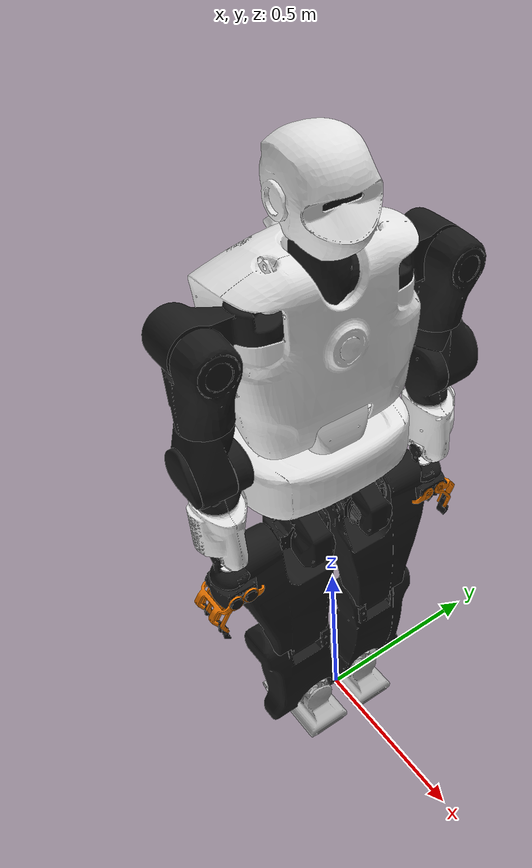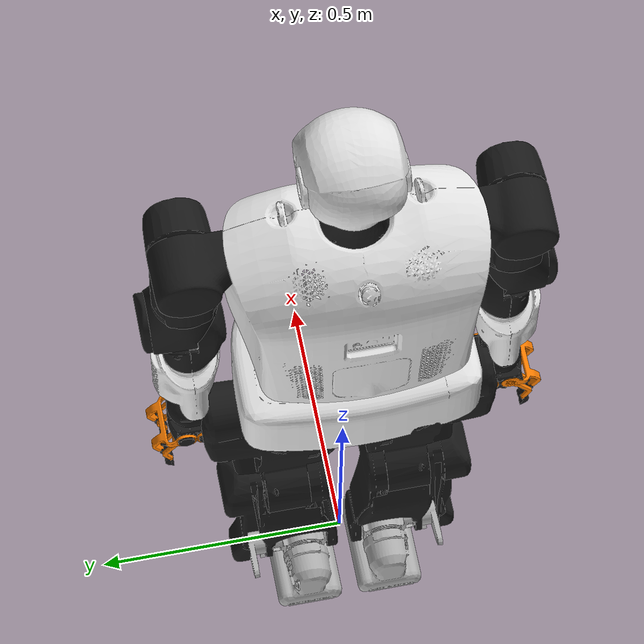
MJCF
<mujoco model="talos">
  <compiler angle="radian" meshdir="assets" autolimits="true"/>

  <default>
    <default class="talos">
      <site group="5" rgba="1 0 0 1" size="0.01" />
      <default class="visual">
        <geom type="mesh" contype="0" conaffinity="0" group="2" density="0"/>
      </default>
      <default class="collision">
        <geom type="capsule" material="bright_orange" group="3" contype="1" conaffinity="1"/>
      </default>
    </default>
  </default>

  <asset>
    <!-- materials -->
    <material name="black" rgba="0.1 0.1 0.1 1"/>
    <material name="orange" rgba="1 0.5 0 1"/>
    <material name="white" rgba="0.9 0.9 0.9 1"/>
    <material name="bright_orange"  rgba="1 0.65 0 0.2"/>
    <!-- meshes -->
    <mesh name="torso_1"                        content_type="model/stl" file="torso/torso_1.stl"/>
    <mesh name="torso_2"                        content_type="model/stl" file="torso/torso_2.stl"/>
    <mesh name="torso_2_collision"              content_type="model/stl" file="torso/torso_2_collision.stl"/>
    <mesh name="base_link"                      content_type="model/stl" file="torso/base_link.stl"/>
    <mesh name="base_link_collision"            content_type="model/stl" file="torso/base_link_collision.stl"/>
    <mesh name="head_1"                         content_type="model/stl" file="head/head_1.stl"/>
    <mesh name="head_2_default"                 content_type="model/stl" file="head/head_2_default.stl"/>
    <mesh name="orbbec"                         content_type="model/stl" file="sensors/orbbec/orbbec.stl"/>
    <mesh name="l_arm_1"                        content_type="model/stl" file="arm/arm_1.stl"/>
    <mesh name="l_arm_2"                        content_type="model/stl" file="arm/arm_2.stl"/>
    <mesh name="l_arm_2c"                       content_type="model/stl" file="arm/arm_2_collision.stl"/>
    <mesh name="l_arm_3"                        content_type="model/stl" file="arm/arm_3.stl"/>
    <mesh name="l_arm_4"                        content_type="model/stl" file="arm/arm_4.stl"/>
    <mesh name="l_arm_5"                        content_type="model/stl" file="arm/arm_5.stl"/>
    <mesh name="l_arm_5c"                       content_type="model/stl" file="arm/arm_5_collision.stl"/>
    <mesh name="l_arm_6"                        content_type="model/stl" file="arm/arm_6.stl"/>
    <mesh name="l_arm_7"                        content_type="model/stl" file="arm/arm_7.stl"/>
    <mesh name="r_arm_1"                        content_type="model/stl" file="arm/arm_1.stl" scale="1 -1 1"/>
    <mesh name="r_arm_2"                        content_type="model/stl" file="arm/arm_2.stl" scale="1 -1 1"/>
    <mesh name="r_arm_2c"                       content_type="model/stl" file="arm/arm_2_collision.stl" scale="1 -1 1"/>
    <mesh name="r_arm_3"                        content_type="model/stl" file="arm/arm_3.stl" scale="1 -1 1"/>
    <mesh name="r_arm_4"                        content_type="model/stl" file="arm/arm_4.stl" scale="1 -1 1"/>
    <mesh name="r_arm_5"                        content_type="model/stl" file="arm/arm_5.stl" scale="1 -1 1"/>
    <mesh name="r_arm_5c"                       content_type="model/stl" file="arm/arm_5_collision.stl" scale="1 -1 1"/>
    <mesh name="r_arm_6"                        content_type="model/stl" file="arm/arm_6.stl" scale="1 -1 1"/>
    <mesh name="r_arm_7"                        content_type="model/stl" file="arm/arm_7.stl" scale="1 -1 1"/>
    <mesh name="gripper_base_link"              content_type="model/stl" file="gripper/base_link.stl"/>
    <mesh name="gripper_base_link_collision"    content_type="model/stl" file="gripper/base_link_collision.stl"/>
    <mesh name="fingertip"                      content_type="model/stl" file="gripper/fingertip.stl"/>
    <mesh name="gripper_motor_double"           content_type="model/stl" file="gripper/gripper_motor_double.stl"/>
    <mesh name="gripper_motor_single"           content_type="model/stl" file="gripper/gripper_motor_single.stl"/>
    <mesh name="inner_double"                   content_type="model/stl" file="gripper/inner_double.stl"/>
    <mesh name="inner_single"                   content_type="model/stl" file="gripper/inner_single.stl"/>
    <mesh name="l_hip_z_lo_res"                 content_type="model/stl" file="v2/hip_z_lo_res.stl"/>
    <mesh name="l_hip_x_lo_res"                 content_type="model/stl" file="v2/hip_x_lo_res.stl"/>
    <mesh name="l_hip_y_lo_res"                 content_type="model/stl" file="v2/hip_y_lo_res.stl"/>
    <mesh name="l_knee_lo_res"                  content_type="model/stl" file="v2/knee_lo_res.stl"/>
    <mesh name="l_knee_collision"               content_type="model/stl" file="v2/knee_collision.stl"/>
    <mesh name="l_ankle_Y_lo_res"               content_type="model/stl" file="v2/ankle_Y_lo_res.stl"/>
    <mesh name="l_ankle_X_lo_res"               content_type="model/stl" file="v2/ankle_X_lo_res.stl"/>
    <mesh name="r_hip_z_lo_res"                 content_type="model/stl" file="v2/hip_z_lo_res.stl" scale="1 -1 1"/>
    <mesh name="r_hip_x_lo_res"                 content_type="model/stl" file="v2/hip_x_lo_res.stl" scale="1 -1 1"/>
    <mesh name="r_hip_y_lo_res"                 content_type="model/stl" file="v2/hip_y_lo_res.stl" scale="1 -1 1"/>
    <mesh name="r_knee_lo_res"                  content_type="model/stl" file="v2/knee_lo_res.stl" scale="1 -1 1"/>
    <mesh name="r_knee_collision"               content_type="model/stl" file="v2/knee_collision.stl" scale="1 -1 1"/>
    <mesh name="r_ankle_Y_lo_res"               content_type="model/stl" file="v2/ankle_Y_lo_res.stl" scale="1 -1 1"/>
    <mesh name="r_ankle_X_lo_res"               content_type="model/stl" file="v2/ankle_X_lo_res.stl" scale="1 -1 1"/>
  </asset>

  <worldbody>
    <body name="base_link" childclass="talos" pos="0 0 1.0">
      <inertial pos="-0.0570942 0.00153054 -0.0762521" quat="0.528705 0.532893 -0.46798 0.466359" mass="15.3628" diaginertia="0.23241 0.200537 0.0841093"/>
      <joint name="reference" type="free" damping="0" frictionloss="0"/>
      <geom class="visual" material="white" mesh="base_link"/>
      <site name="imu_in_pelvis" size="0.01" pos="0.0 0 0.0"/>
      <geom name="base_collision" class="collision" type="mesh" mesh="base_link_collision"/>
      <body name="torso_1_link" pos="0 0 0.0722">
        <inertial pos="0.00078223 3.528e-05 -0.0178246" quat="0.703744 0.704233 0.0663452 -0.0663278" mass="2.29466" diaginertia="0.00639091 0.00622386 0.00410256"/>
        <joint name="torso_1_joint" pos="0 0 0" axis="0 0 1" range="-1.25664 1.25664" actuatorfrcrange="-200 200" frictionloss="2"/>
        <geom class="visual" material="white" mesh="torso_1"/>
        <body name="torso_2_link">
          <inertial pos="-0.0463 -0.000989647 0.145241" quat="0.704021 0.708473 0.0363665 -0.0331367" mass="16.984" diaginertia="0.444971 0.320913 0.299991"/>
          <joint name="torso_2_joint" pos="0 0 0" axis="0 1 0" range="-0.226893 0.733038" actuatorfrcrange="-200 200" frictionloss="2"/>
          <geom class="visual" material="white" mesh="torso_2"/>
          <geom name="torso_2_collision" class="collision" type="mesh" mesh="torso_2_collision"/>
          <geom class="visual" size="0.005 0.005 0.005" pos="0.04925 0 0.078" quat="0 0.707107 0.707107 0" type="box" material="black"/>
          <body name="head_1_link" pos="0 0 0.316">
            <inertial pos="-0.00157211 -0.00157919 0.0217577" quat="0.679576 0.71147 -0.126684 0.126246" mass="0.73746" diaginertia="0.0022809 0.00202202 0.00110971"/>
            <joint name="head_1_joint" pos="0 0 0" axis="0 1 0" range="-0.20944 0.785398" actuatorfrcrange="-8 8" damping="0.5"/>
            <geom class="visual" material="black" mesh="head_1"/>
            <geom name="head_1_collision" class="collision" type="mesh" mesh="head_1"/>
            <body name="head_2_link">
              <inertial pos="0.0108233 0.000630364 0.142045" quat="0.584927 -0.0294601 -0.0201927 0.810299" mass="1.46795" diaginertia="0.0110721 0.0109715 0.00581517"/>
              <joint name="head_2_joint" pos="0 0 0" axis="0 0 1" range="-1.309 1.309" actuatorfrcrange="-4 4" damping="0.5"/>
              <geom class="visual" material="white" mesh="head_2_default"/>
              <geom name="head_2_collision" class="collision" type="mesh" mesh="head_2_default"/>
              <geom class="visual" pos="0.0621 0.0375 0.1832" quat="1 0 0 0" material="black" mesh="orbbec"/>
              <geom name="orbbec_collision" class="collision" type="mesh" pos="0.0621 0.0375 0.1832" quat="1 0 0 0" mesh="orbbec"/>
              <site name="head" pos="0 0 0.2"/>
            </body>
          </body>
          <body name="arm_left_1_link" pos="0 0.1575 0.232">
            <inertial pos="-0.0002762 0.100602 0.0443742" quat="0.509187 0.520076 -0.492016 0.477671" mass="2.71457" diaginertia="0.0135919 0.012374 0.00418528"/>
            <joint name="arm_left_1_joint" pos="0 0 0" axis="0 0 1" range="-1.5708 0.785398" actuatorfrcrange="-100 100"/>
            <geom class="visual" material="black" mesh="l_arm_1"/>
            <body name="arm_left_2_link" pos="0.00493 0.1365 0.04673">
              <inertial pos="0.0143883 0.00092938 -0.0868427" quat="0.981914 0.00964503 0.164999 0.0923476" mass="2.42509" diaginertia="0.0140925 0.0138001 0.00368288"/>
              <joint name="arm_left_2_joint" pos="0 0 0" axis="1 0 0" range="-0.001 2.87107" actuatorfrcrange="-100 100"/>
              <geom class="visual" material="black" mesh="l_arm_2"/>
              <geom class="collision" type="mesh" mesh="l_arm_2c"/>
              <body name="arm_left_3_link">
                <inertial pos="0.0136084 0.0124162 -0.2499" quat="0.991718 0.0691072 -0.105592 -0.0238848" mass="2.20874" diaginertia="0.00735601 0.00699198 0.0036592"/>
                <joint name="arm_left_3_joint" pos="0 0 0" axis="0 0 1" range="-2.42601 2.42601" actuatorfrcrange="-70 70"/>
                <geom class="visual" material="black" mesh="l_arm_3"/>
                <body name="arm_left_4_link" pos="0.02 0 -0.2782">
                  <inertial pos="-0.00810404 -0.0194433 -0.0332924" quat="0.428586 -0.11894 0.057285 0.893804" mass="0.815675" diaginertia="0.00326211 0.002924 0.00111543"/>
                  <joint name="arm_left_4_joint" pos="0 0 0" axis="0 1 0" range="-2.23402 0.001" actuatorfrcrange="-70 70"/>
                  <geom class="visual" material="black" mesh="l_arm_4"/>
                  <body name="arm_left_5_link" pos="-0.02 0 -0.2643">
                    <inertial pos="-6e-05 0.003262 0.079625" quat="0.711712 -0.019748 0.0131536 0.70207" mass="1.87792" diaginertia="0.004373 0.003495 0.002278"/>
                    <joint name="arm_left_5_joint" pos="0 0 0" axis="0 0 1" range="-2.51327 2.51327" actuatorfrcrange="-20 20"/>
                    <geom class="visual" material="white" mesh="l_arm_5"/>
                    <geom class="collision" type="mesh" mesh="l_arm_5c"/>
                    <body name="arm_left_6_link">
                      <inertial pos="2.1e-05 -0.001965 -0.000591" quat="0.0104356 0.706678 0.0122672 0.707352" mass="0.40931" diaginertia="0.000154 0.000141 0.000107"/>
                      <joint name="arm_left_6_joint" pos="0 0 0" axis="1 0 0" range="-1.37008 1.37008" actuatorfrcrange="-8 8"/>
                      <geom class="visual" material="white" mesh="l_arm_6"/>
                      <body name="arm_left_7_link">
                        <inertial pos="0.00215393 0.00361697 -0.0837948" quat="0.966304 0.0192407 0.0500561 -0.251755" mass="1.04198" diaginertia="0.00273016 0.00272405 0.0010495"/>
                        <joint name="arm_left_7_joint" pos="0 0 0" axis="0 1 0" range="-0.680678 0.680678" actuatorfrcrange="-8 8"/>
                        <geom class="visual" material="black" mesh="l_arm_7"/>
                        <geom class="visual" size="0.0225 0.00785" pos="0 0 -0.051" quat="-0.707107 0 0 -0.707107" type="cylinder" material="white"/>
                        <geom class="visual" size="0.025 0.004875" pos="0 0 -0.063725" type="cylinder" material="black"/>
                        <geom class="visual" pos="0 0 -0.092475" quat="1 0 0 0" material="black" mesh="gripper_base_link"/>
                        <geom class="collision" type="mesh" pos="0 0 -0.092475" quat="1 0 0 0" mesh="gripper_base_link_collision"/>
                        <body name="gripper_left_motor_double_link" pos="0 0.02025 -0.122475">
                          <inertial pos="0.019654 0.018572 -0.011998" quat="0.434706 0.588708 -0.0217956 0.68116" mass="0.134356" diaginertia="0.000272 0.000221 8e-05"/>
                          <geom class="visual" material="orange" mesh="gripper_motor_double"/>
                        </body>
                        <body name="gripper_left_inner_double_link" pos="0 0.00525 -0.148455">
                          <inertial pos="-0.013283 0.036852 -0.023153" quat="0.312568 0.633813 0.365244 0.605953" mass="0.087986" diaginertia="0.000144 8.89999e-05 7.4e-05"/>
                          <geom class="visual" material="orange" mesh="inner_double"/>
                          <body name="gripper_left_fingertip_1_link" pos="0.032 0.04589 -0.06553">
                            <inertial pos="0 0.004604 -0.002537" quat="0.70316 -0.074603 0.074603 0.70316" mass="0.026301" diaginertia="8.99999e-06 8e-06 2e-06"/>
                            <geom class="visual" material="black" mesh="fingertip"/>
                          </body>
                          <body name="gripper_left_fingertip_2_link" pos="-0.032 0.04589 -0.06553">
                            <inertial pos="0 0.004604 -0.002537" quat="0.70316 -0.074603 0.074603 0.70316" mass="0.026301" diaginertia="8.99999e-06 8e-06 2e-06"/>
                            <geom class="visual" material="black" mesh="fingertip"/>
                          </body>
                        </body>
                        <body name="gripper_left_motor_single_link" pos="0 -0.02025 -0.122475">
                          <inertial pos="0.025237 -0.011231 -0.008158" quat="-0.429079 0.588757 0.0530926 0.682962" mass="0.107923" diaginertia="0.000171 0.000142 5.1e-05"/>
                          <geom class="visual" material="orange" mesh="gripper_motor_single"/>
                        </body>
                        <body name="gripper_left_inner_single_link" pos="0 -0.00525 -0.148455">
                          <inertial pos="0 -0.034565 -0.021412" quat="0.672196 -0.216723 0.212111 0.67542" mass="0.047177" diaginertia="4.3e-05 4.2e-05 1.1e-05"/>
                          <geom class="visual" material="orange" mesh="inner_single"/>
                          <body name="gripper_left_fingertip_3_link" pos="0 -0.04589 -0.06553" quat="0 0 0 1">
                            <inertial pos="0 0.004604 -0.002537" quat="0.70316 -0.074603 0.074603 0.70316" mass="0.026301" diaginertia="8.99999e-06 8e-06 2e-06"/>
                            <geom class="visual" material="black" mesh="fingertip"/>
                            <site name="left_palm" pos="0 -0.05 0"/>
                          </body>
                        </body>
                      </body>
                    </body>
                  </body>
                </body>
              </body>
            </body>
          </body>
          <body name="arm_right_1_link" pos="0 -0.1575 0.232">
            <inertial pos="-0.0002762 -0.100602 0.0443742" quat="0.520076 0.509187 -0.477671 0.492016" mass="2.71457" diaginertia="0.0135919 0.012374 0.00418528"/>
            <joint name="arm_right_1_joint" pos="0 0 0" axis="0 0 1" range="-0.785398 1.5708" actuatorfrcrange="-100 100"/>
            <geom class="visual" material="black" mesh="r_arm_1"/>
            <body name="arm_right_2_link" pos="0.00493 -0.1365 0.04673">
              <inertial pos="0.0143883 -0.00092938 -0.0868427" quat="0.981914 -0.00964503 0.164999 -0.0923476" mass="2.42509" diaginertia="0.0140925 0.0138001 0.00368288"/>
              <joint name="arm_right_2_joint" pos="0 0 0" axis="1 0 0" range="-2.87107 0.001" actuatorfrcrange="-100 100"/>
              <geom class="visual" material="black" mesh="r_arm_2"/>
              <geom class="collision" type="mesh" mesh="r_arm_2c"/>
              <body name="arm_right_3_link">
                <inertial pos="0.0136084 -0.0124162 -0.2499" quat="0.991718 -0.0691072 -0.105592 0.0238848" mass="2.20874" diaginertia="0.00735601 0.00699198 0.0036592"/>
                <joint name="arm_right_3_joint" pos="0 0 0" axis="0 0 1" range="-2.42601 2.42601" actuatorfrcrange="-70 70"/>
                <geom class="visual" material="black" mesh="r_arm_3"/>
                <body name="arm_right_4_link" pos="0.02 0 -0.2782">
                  <inertial pos="-0.00810404 -0.0194433 -0.0332924" quat="0.428586 -0.11894 0.057285 0.893804" mass="0.815675" diaginertia="0.00326211 0.002924 0.00111543"/>
                  <joint name="arm_right_4_joint" pos="0 0 0" axis="0 1 0" range="-2.23402 0.001" actuatorfrcrange="-70 70"/>
                  <geom class="visual" material="black" mesh="r_arm_4"/>
                  <body name="arm_right_5_link" pos="-0.02 0 -0.2643">
                    <inertial pos="-6e-05 -0.003262 0.079625" quat="0.70207 0.0131536 -0.019748 0.711712" mass="1.87792" diaginertia="0.004373 0.003495 0.002278"/>
                    <joint name="arm_right_5_joint" pos="0 0 0" axis="0 0 1" range="-2.51327 2.51327" actuatorfrcrange="-20 20"/>
                    <geom class="visual" material="white" mesh="r_arm_5"/>
                    <geom class="collision" type="mesh" mesh="r_arm_5c"/>
                    <body name="arm_right_6_link">
                      <inertial pos="2.1e-05 0.001965 -0.000591" quat="-0.0104356 0.706678 -0.0122672 0.707352" mass="0.40931" diaginertia="0.000154 0.000141 0.000107"/>
                      <joint name="arm_right_6_joint" pos="0 0 0" axis="1 0 0" range="-1.37008 1.37008" actuatorfrcrange="-8 8"/>
                      <geom class="visual" material="white" mesh="r_arm_6"/>
                      <body name="arm_right_7_link">
                        <inertial pos="0.0023011 -0.00361697 -0.0837948" quat="0.927123 -0.0149278 0.0465372 0.371557" mass="1.04198" diaginertia="0.00273231 0.00271796 0.00105208"/>
                        <joint name="arm_right_7_joint" pos="0 0 0" axis="0 1 0" range="-0.680678 0.680678" actuatorfrcrange="-8 8"/>
                        <geom class="visual" material="black" mesh="r_arm_7"/>
                        <geom class="visual" size="0.0225 0.00785" pos="0 0 -0.051" quat="0.707107 0 0 -0.707107" type="cylinder" material="white"/>
                        <geom class="visual" size="0.025 0.004875" pos="0 0 -0.063725" quat="0 0 0 -1" type="cylinder" material="black"/>
                        <geom class="visual" pos="0 0 -0.092475" quat="0 0 0 -1" material="black" mesh="gripper_base_link"/>
                        <geom class="collision" type="mesh" pos="0 0 -0.092475" quat="0 0 0 -1" mesh="gripper_base_link_collision"/>
                        <body name="gripper_right_motor_double_link" pos="0 -0.02025 -0.122475" quat="0 0 0 -1">
                          <inertial pos="0.019654 0.018572 -0.011998" quat="0.434706 0.588708 -0.0217956 0.68116" mass="0.134356" diaginertia="0.000272 0.000221 8e-05"/>
                          <geom class="visual" material="orange" mesh="gripper_motor_double"/>
                        </body>
                        <body name="gripper_right_inner_double_link" pos="0 -0.00525 -0.148455" quat="0 0 0 -1">
                          <inertial pos="-0.013283 0.036852 -0.023153" quat="0.312568 0.633813 0.365244 0.605953" mass="0.087986" diaginertia="0.000144 8.89999e-05 7.4e-05"/>
                          <geom class="visual" material="orange" mesh="inner_double"/>
                          <body name="gripper_right_fingertip_1_link" pos="0.032 0.04589 -0.06553">
                            <inertial pos="0 0.004604 -0.002537" quat="0.70316 -0.074603 0.074603 0.70316" mass="0.026301" diaginertia="8.99999e-06 8e-06 2e-06"/>
                            <geom class="visual" material="black" mesh="fingertip"/>
                          </body>
                          <body name="gripper_right_fingertip_2_link" pos="-0.032 0.04589 -0.06553">
                            <inertial pos="0 0.004604 -0.002537" quat="0.70316 -0.074603 0.074603 0.70316" mass="0.026301" diaginertia="8.99999e-06 8e-06 2e-06"/>
                            <geom class="visual" material="black" mesh="fingertip"/>
                            <site name="right_palm" pos="0 -0.05 0"/>
                          </body>
                        </body>
                        <body name="gripper_right_motor_single_link" pos="0 0.02025 -0.122475" quat="0 0 0 -1">
                          <inertial pos="0.025237 -0.011231 -0.008158" quat="-0.429079 0.588757 0.0530926 0.682962" mass="0.107923" diaginertia="0.000171 0.000142 5.1e-05"/>
                          <geom class="visual" material="orange" mesh="gripper_motor_single"/>
                        </body>
                        <body name="gripper_right_inner_single_link" pos="0 0.00525 -0.148455" quat="0 0 0 -1">
                          <inertial pos="0 -0.034565 -0.021412" quat="0.672196 -0.216723 0.212111 0.67542" mass="0.047177" diaginertia="4.3e-05 4.2e-05 1.1e-05"/>
                          <geom class="visual" material="orange" mesh="inner_single"/>
                          <body name="gripper_right_fingertip_3_link" pos="0 -0.04589 -0.06553" quat="0 0 0 1">
                            <inertial pos="0 0.004604 -0.002537" quat="0.70316 -0.074603 0.074603 0.70316" mass="0.026301" diaginertia="8.99999e-06 8e-06 2e-06"/>
                            <geom class="visual" material="black" mesh="fingertip"/>
                          </body>
                        </body>
                      </body>
                    </body>
                  </body>
                </body>
              </body>
            </body>
          </body>
        </body>
      </body>
      <body name="leg_left_1_link" pos="-0.02 0.085 -0.27105">
        <inertial pos="0.0847284 0.109974 0.017059" quat="0.522748 -0.852371 -0.00673577 0.012351" mass="2.23501" diaginertia="0.0105013 0.0076913 0.00473271"/>
        <joint name="leg_left_1_joint" pos="0 0 0" axis="0 0 1" range="-0.349066 1.5708" actuatorfrcrange="-100 100"/>
        <geom class="visual" material="black" mesh="l_hip_z_lo_res"/>
        <body name="leg_left_2_link">
          <inertial pos="-0.00704703 0.0259266 0.00273385" quat="0.712294 0.701399 -0.00472331 -0.0255805" mass="1.49095" diaginertia="0.00497732 0.00474343 0.00189918"/>
          <joint name="leg_left_2_joint" pos="0 0 0" axis="1 0 0" range="-0.5236 0.5236" actuatorfrcrange="-160 160"/>
          <geom class="visual" material="black" mesh="l_hip_x_lo_res"/>
          <body name="leg_left_3_link">
            <inertial pos="0.0058523 0.0636967 -0.183396" quat="0.995121 -0.0974306 -0.00559068 0.0145098" mass="6.23987" diaginertia="0.153409 0.140791 0.0256712"/>
            <joint name="leg_left_3_joint" pos="0 0 0" axis="0 1 0" range="-2.095 0.7" actuatorfrcrange="-160 160"/>
            <geom class="visual" material="black" mesh="l_hip_y_lo_res"/>
            <body name="leg_left_4_link" pos="0 0 -0.38">
              <inertial pos="0.0131772 0.0291751 -0.115946" quat="0.999357 0.00773677 -0.0135107 0.0322952" mass="3.75995" diaginertia="0.0429266 0.0359662 0.013621"/>
              <joint name="leg_left_4_joint" pos="0 0 0" axis="0 1 0" range="0 2.618" actuatorfrcrange="-400 400"/>
              <geom class="visual" material="black" mesh="l_knee_lo_res"/>
              <geom name="leg_left_4_collision" class="collision" type="mesh" mesh="l_knee_collision"/>
              <body name="leg_left_5_link" pos="0 0 -0.325">
                <inertial pos="-0.0140084 0.0418006 0.0382019" quat="0.94386 -0.249123 0.00319491 0.216924" mass="1.29096" diaginertia="0.0118206 0.010046 0.00352112"/>
                <joint name="leg_left_5_joint" pos="0 0 0" axis="0 1 0" range="-1.27 0.68" actuatorfrcrange="-160 160"/>
                <geom class="visual" rgba="0.7 0.7 0.7 1" mesh="l_ankle_Y_lo_res"/>
                <body name="leg_left_6_link">
                  <inertial pos="-0.0201699 -0.000510665 -0.0602836" quat="0.343485 0.610901 0.618186 0.3559" mass="1.61177" diaginertia="0.00773279 0.006503 0.00387932"/>
                  <joint name="leg_left_6_joint" pos="0 0 0" axis="1 0 0" range="-0.5236 0.5236" actuatorfrcrange="-100 100"/>
                  <geom class="visual" rgba="0.7 0.7 0.7 1" mesh="l_ankle_X_lo_res"/>
                  <geom name="left_foot_collision" class="collision" size="0.1 0.06 0.02" pos="-0.005 0 -0.087" type="box"/>
                  <site name="left_foot" pos="0 0 -0.1"/>
                </body>
              </body>
            </body>
          </body>
        </body>
      </body>
      <body name="leg_right_1_link" pos="-0.02 -0.085 -0.27105">
        <inertial pos="0.0847284 -0.109974 0.017059" quat="0.522748 0.852371 -0.00673577 0.012351" mass="2.23501" diaginertia="0.0105013 0.0076913 0.00473271"/>
        <joint name="leg_right_1_joint" pos="0 0 0" axis="0 0 1" range="-1.5708 0.349066" actuatorfrcrange="-100 100"/>
        <geom class="visual" material="black" mesh="r_hip_z_lo_res"/>
        <body name="leg_right_2_link">
          <inertial pos="-0.00704703 -0.0259266 0.00273385" quat="0.701399 0.712294 0.0255805 0.00472331" mass="1.49095" diaginertia="0.00497732 0.00474343 0.00189918"/>
          <joint name="leg_right_2_joint" pos="0 0 0" axis="1 0 0" range="-0.5236 0.5236" actuatorfrcrange="-160 160"/>
          <geom class="visual" material="black" mesh="r_hip_x_lo_res"/>
          <body name="leg_right_3_link">
            <inertial pos="0.0058523 -0.0636967 -0.183396" quat="0.995121 0.0974306 -0.00559068 -0.0145098" mass="6.23987" diaginertia="0.153409 0.140791 0.0256712"/>
            <joint name="leg_right_3_joint" pos="0 0 0" axis="0 1 0" range="-2.095 0.7" actuatorfrcrange="-160 160"/>
            <geom class="visual" material="black" mesh="r_hip_y_lo_res"/>
            <body name="leg_right_4_link" pos="0 0 -0.38">
              <inertial pos="0.0131772 -0.0291751 -0.115946" quat="0.999357 -0.00773677 -0.0135107 -0.0322952" mass="3.75995" diaginertia="0.0429266 0.0359662 0.013621"/>
              <joint name="leg_right_4_joint" pos="0 0 0" axis="0 1 0" range="0 2.618" actuatorfrcrange="-400 400"/>
              <geom class="visual" material="black" mesh="r_knee_lo_res"/>
              <geom name="leg_right_4_collision" class="collision" type="mesh" mesh="r_knee_collision"/>
              <body name="leg_right_5_link" pos="0 0 -0.325">
                <inertial pos="-0.0140084 -0.0418006 0.0382019" quat="0.94386 0.249123 0.00319491 -0.216924" mass="1.29096" diaginertia="0.0118206 0.010046 0.00352112"/>
                <joint name="leg_right_5_joint" pos="0 0 0" axis="0 1 0" range="-1.27 0.68" actuatorfrcrange="-160 160"/>
                <geom class="visual" rgba="0.7 0.7 0.7 1" mesh="r_ankle_Y_lo_res"/>
                <body name="leg_right_6_link">
                  <inertial pos="-0.0201699 0.000510665 -0.0602836" quat="0.3559 0.618186 0.610901 0.343485" mass="1.61177" diaginertia="0.00773279 0.006503 0.00387932"/>
                  <joint name="leg_right_6_joint" pos="0 0 0" axis="1 0 0" range="-0.5236 0.5236" actuatorfrcrange="-100 100"/>
                  <geom class="visual" rgba="0.7 0.7 0.7 1" mesh="r_ankle_X_lo_res"/>
                  <geom name="right_foot_collision" class="collision" size="0.1 0.06 0.02" pos="-0.005 0 -0.087" type="box"/>
                  <site name="right_foot" pos="0 0 -0.1"/>
                </body>
              </body>
            </body>
          </body>
        </body>
      </body>
    </body>
  </worldbody>

  <contact>
    <exclude body1="base_link" body2="torso_2_link"/>
    <exclude body1="base_link" body2="leg_left_3_link"/>
    <exclude body1="base_link" body2="leg_right_3_link"/>
    <exclude body1="arm_left_4_link" body2="arm_left_7_link"/>
    <exclude body1="arm_left_5_link" body2="arm_left_7_link"/>
    <exclude body1="arm_left_6_link" body2="arm_left_7_link"/>
    <exclude body1="arm_right_4_link" body2="arm_right_7_link"/>
    <exclude body1="arm_right_5_link" body2="arm_right_7_link"/>
    <exclude body1="arm_right_6_link" body2="arm_right_7_link"/>
    <exclude body1="leg_left_1_link" body2="leg_left_3_link"/>
    <exclude body1="leg_left_2_link" body2="leg_left_3_link"/>
    <exclude body1="leg_left_3_link" body2="leg_left_4_link"/>
    <exclude body1="leg_left_4_link" body2="leg_left_6_link"/>
    <exclude body1="leg_right_1_link" body2="leg_right_3_link"/>
    <exclude body1="leg_right_2_link" body2="leg_right_3_link"/>
    <exclude body1="leg_right_3_link" body2="leg_right_4_link"/>
    <exclude body1="leg_right_4_link" body2="leg_right_6_link"/>
  </contact>

  <sensor>
    <gyro name="imu_ang_vel" site="imu_in_pelvis"/>
    <velocimeter name="imu_lin_vel" site="imu_in_pelvis"/>
    <accelerometer name="imu_lin_acc" site="imu_in_pelvis"/>
    <subtreeangmom name="root_angmom" body="base_link"/>
  </sensor>
</mujoco>
